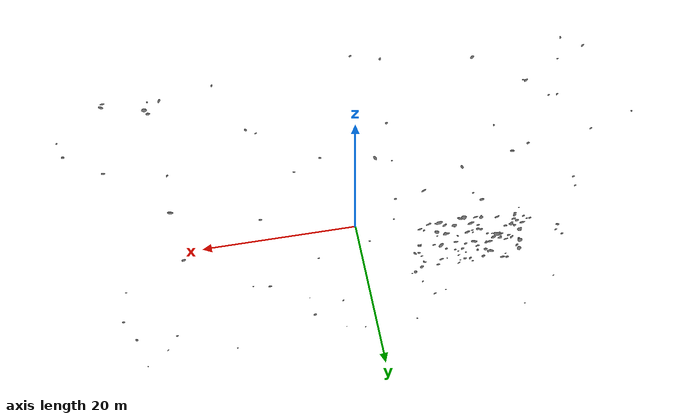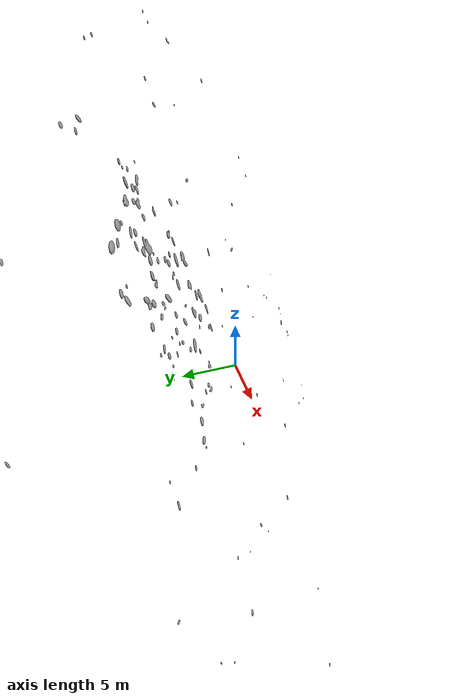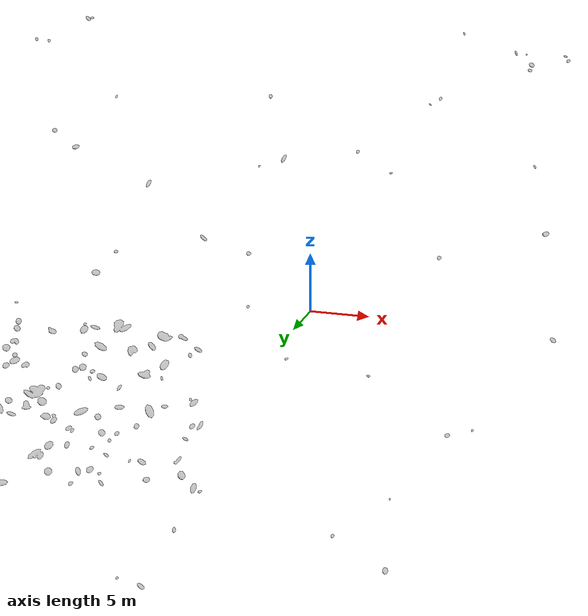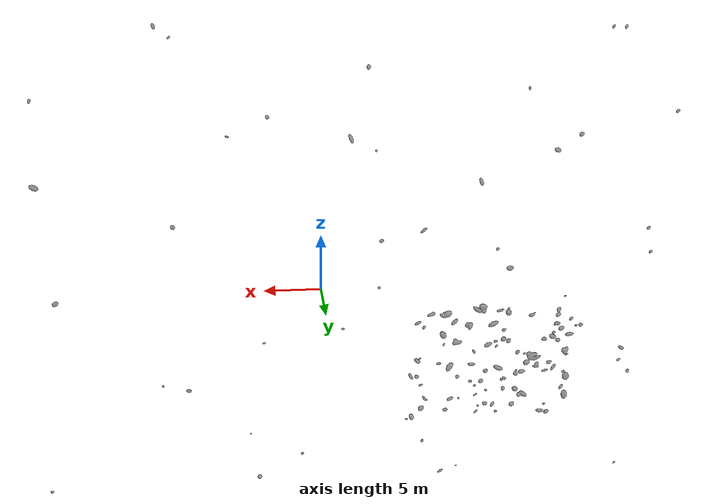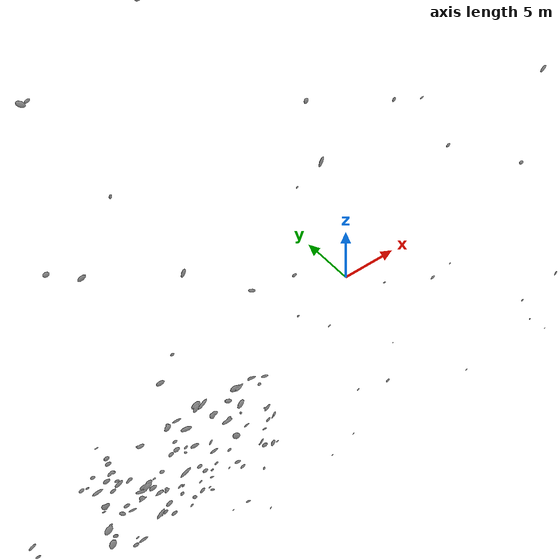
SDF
<?xml version="1.0"?>
<sdf version="1.5">
  <model name="underwater_pebbles">
    <static>true</static>
    <link name="link">
      <visual name="visual">
        <geometry>
          <mesh>
            <uri>model://underwater_pebbles/meshes/pebbles.obj</uri>
          </mesh>
        </geometry>
      </visual>
    </link>
  </model>
</sdf>
